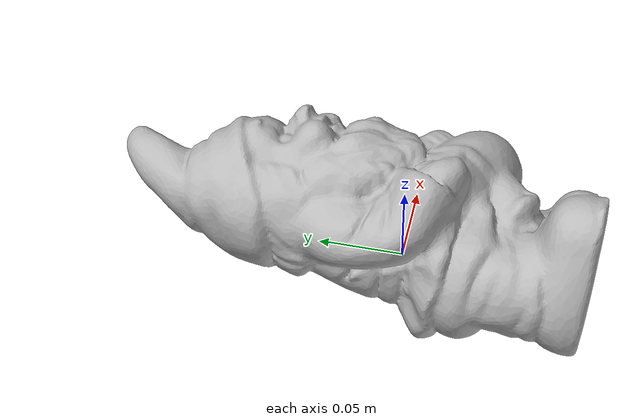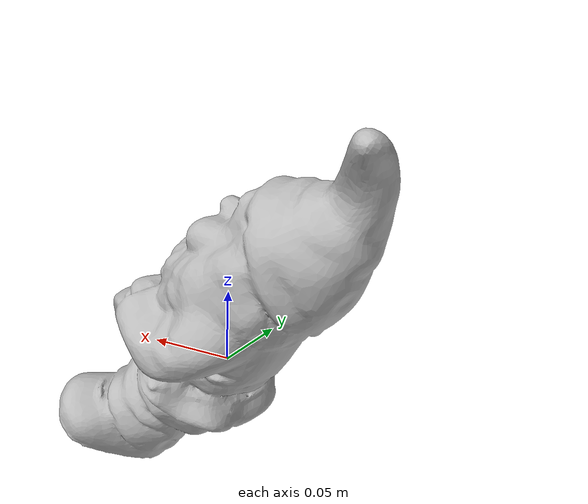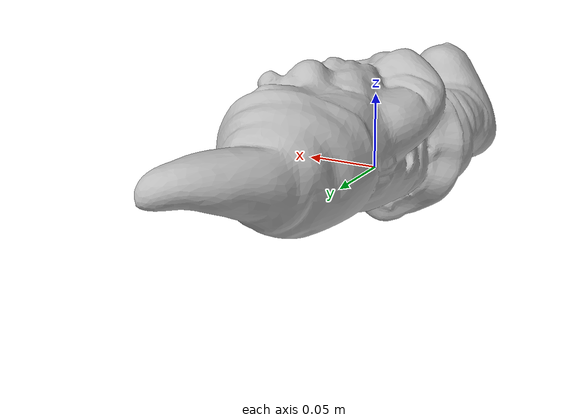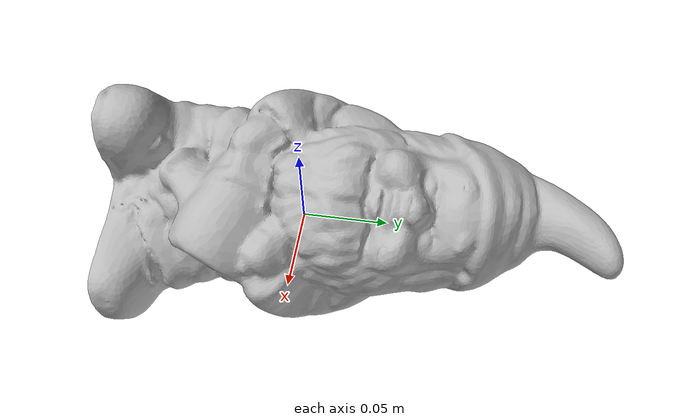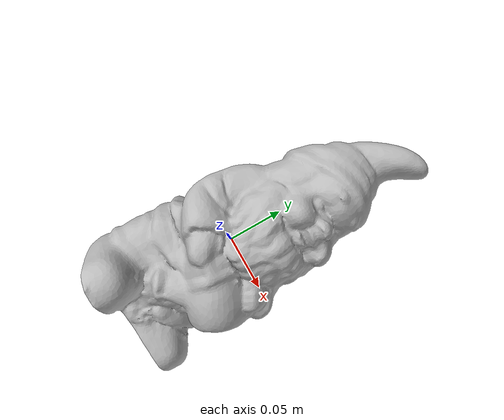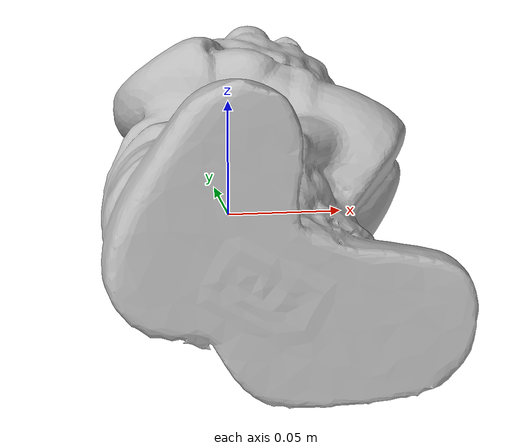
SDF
<?xml version='1.0'?>
<sdf version="1.4">
  <model name="Dwarf">
    <static>false</static>
    <link name="link">
      <inertial>
        <pose>0.009495696838584972 -0.002722091746617974 0.018831442475912657 1.7900313438045312 -1.0836590672908464 -0.22331098346365316</pose>
        <mass>0.22858902751507645</mass>
        <inertia>
          <ixx>0.0011996313805177272</ixx>
          <ixy>-8.305094774229082e-20</ixy>
          <ixz>1.8859077031505574e-19</ixz>
          <iyy>0.0011466954001085625</iyy>
          <iyz>3.5825152302591434e-20</iyz>
          <izz>0.0003672664298389981</izz>
        </inertia>
      </inertial>
      <collision name="collision">
        <geometry>
          <mesh>
            <!-- Use a downsampled mesh for collisions -->
            <uri>model:///Dwarf/Dwarf_250_collision.obj</uri>
	        </mesh>
        </geometry>
        <surface>
      </surface>
      </collision>
      <visual name="visual">
        <geometry>
          <mesh>
            <uri>model:///Dwarf/Dwarf_25k_tex.obj</uri>
	        </mesh>
        </geometry>
        <material>
          <script>
            <uri>model:///Dwarf/Dwarf.material</uri>
            <name>Dwarf</name>
          </script>
        </material>
      </visual>
    </link>
  </model>
</sdf>
